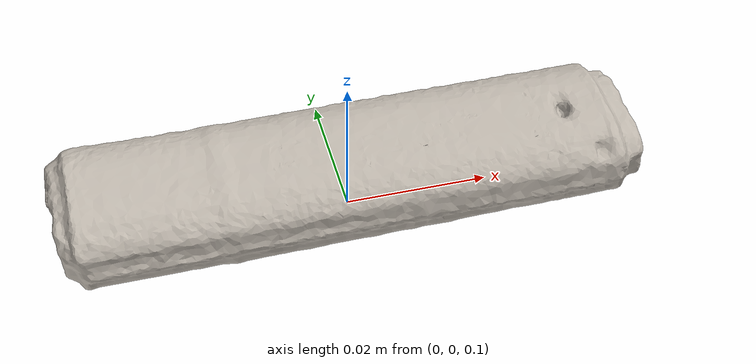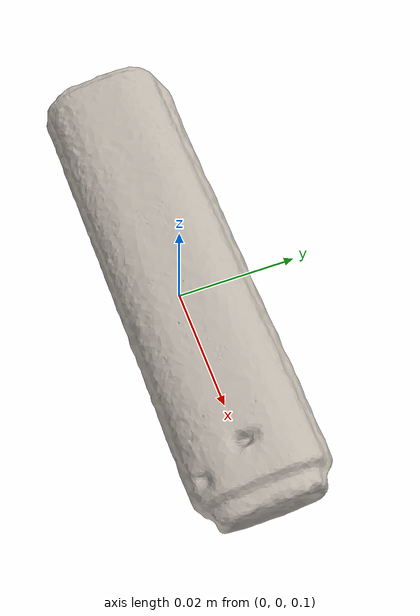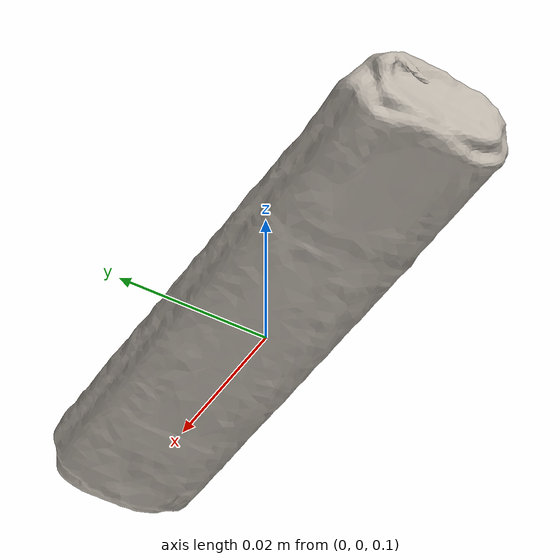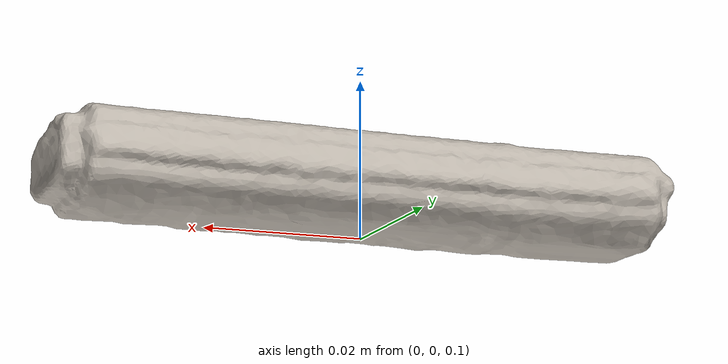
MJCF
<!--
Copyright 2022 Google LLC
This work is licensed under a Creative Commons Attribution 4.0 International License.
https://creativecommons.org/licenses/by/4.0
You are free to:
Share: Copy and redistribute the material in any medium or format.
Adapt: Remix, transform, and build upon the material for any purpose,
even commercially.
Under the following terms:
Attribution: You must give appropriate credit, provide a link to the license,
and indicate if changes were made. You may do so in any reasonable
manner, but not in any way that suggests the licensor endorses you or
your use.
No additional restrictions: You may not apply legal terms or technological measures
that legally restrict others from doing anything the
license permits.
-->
<mujoco model="Kingston_DT4000MR_G2_Management_Ready_USB_64GB">
  <compiler assetdir="meshes" texturedir="materials/textures"/>

  <asset>
    <texture type="2d" name="texture" file="texture.png"/>
    <material name="texture" texture="texture"/>

    <mesh file="model.obj"/>
    <mesh file="coacd_part_000.obj"/>
  </asset>

  <default>
    <default class="Kingston_DT4000MR_G2_Management_Ready_USB_64GB">
      <default class="visual_Kingston_DT4000MR_G2_Management_Ready_USB_64GB">
        <geom type="mesh" group="2" density="200" contype="0" conaffinity="0" material="texture"/>
      </default>
      <default class="collision_Kingston_DT4000MR_G2_Management_Ready_USB_64GB">
        <geom type="mesh" group="3" mass="0" density="0" solref=".004 1" friction="1.0 0.01 0.01" condim="6"/>
      </default>
    </default>
  </default>

  <worldbody>
    <body childclass="Kingston_DT4000MR_G2_Management_Ready_USB_64GB" pos="0 0 0.1">
      <freejoint/>
      <geom class="visual_Kingston_DT4000MR_G2_Management_Ready_USB_64GB" mesh="model"/>
      <geom class="collision_Kingston_DT4000MR_G2_Management_Ready_USB_64GB" mesh="coacd_part_000" rgba="0.375 0.95 0.73 1"/>
    </body>
  </worldbody>
</mujoco>
